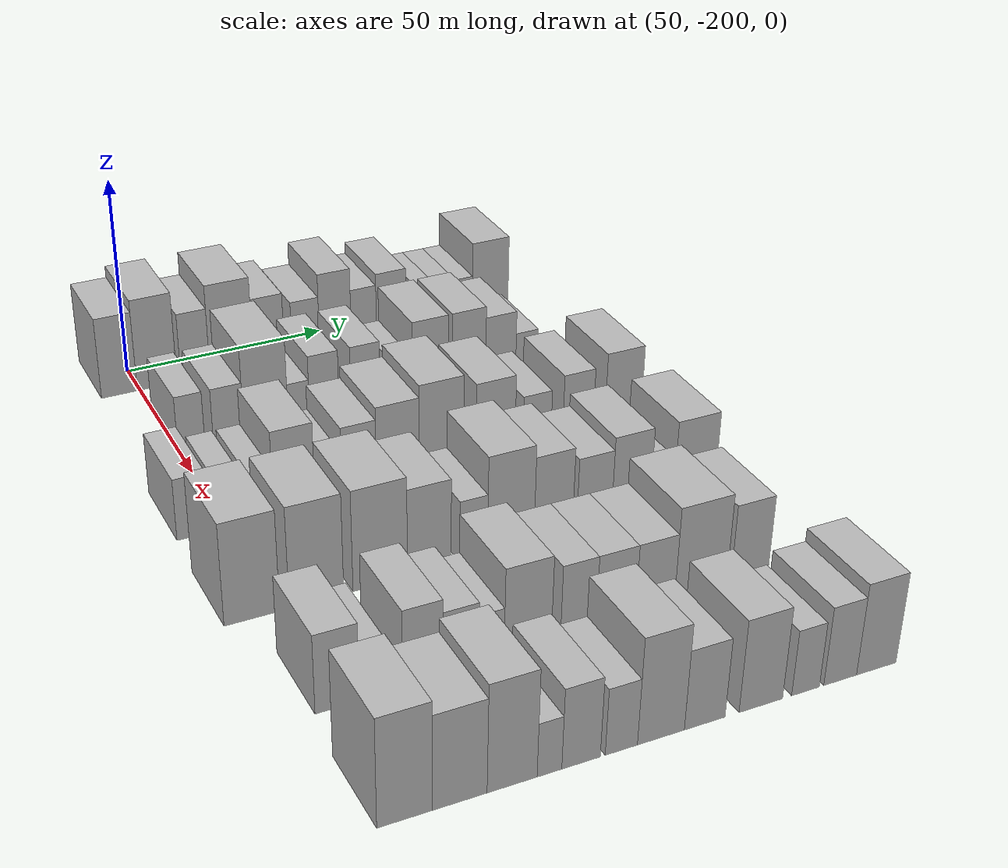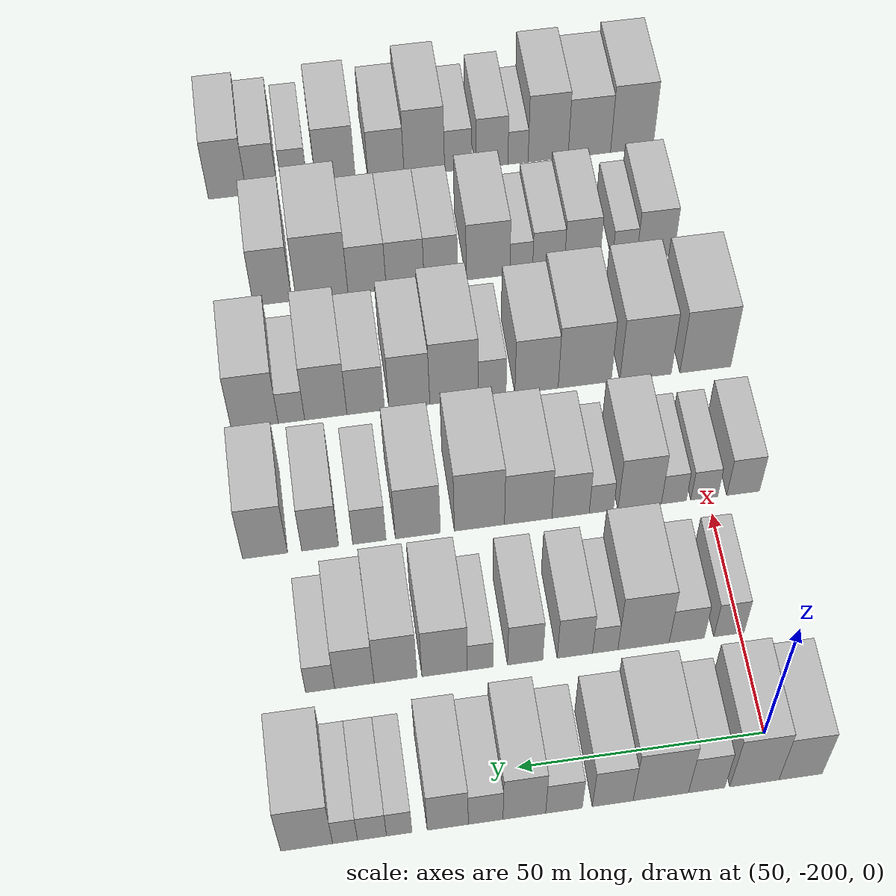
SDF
<sdf version="1.6">
 <world name="default">
  <model name="building_34">
   <static>1</static>
   <pose>50.0000 -205.0036 0 0.000000 0.000000 0.000000</pose>
   <link name="link">
    <pose>0 0 10.50 0 0 0</pose>
    <collision name="collision"><geometry><box><size>20.0000 8.7688 21.0000</size></box></geometry></collision>
    <visual name="visual">
     <cast_shadows>0</cast_shadows>
     <geometry><box><size>20.0000 8.7688 21.0000</size></box></geometry>
     <material>
      <script>
       <uri>model://HANNAS_wall/materials/scripts</uri>
       <uri>model://HANNAS_wall/materials/textures</uri>
       <name>vrc/HANNAS_wall</name>
      </script>
     </material>
    </visual>
   </link>
  </model>
  <model name="building_35">
   <static>1</static>
   <pose>50.0000 -195.6657 0 0.000000 0.000000 0.000000</pose>
   <link name="link">
    <pose>0 0 12.00 0 0 0</pose>
    <collision name="collision"><geometry><box><size>20.0000 9.9071 24.0000</size></box></geometry></collision>
    <visual name="visual">
     <cast_shadows>0</cast_shadows>
     <geometry><box><size>20.0000 9.9071 24.0000</size></box></geometry>
     <material>
      <script>
       <uri>model://HANNAS_wall/materials/scripts</uri>
       <uri>model://HANNAS_wall/materials/textures</uri>
       <name>vrc/HANNAS_wall</name>
      </script>
     </material>
    </visual>
   </link>
  </model>
  <model name="building_36">
   <static>1</static>
   <pose>50.0000 -186.0574 0 0.000000 0.000000 0.000000</pose>
   <link name="link">
    <pose>0 0 9.00 0 0 0</pose>
    <collision name="collision"><geometry><box><size>20.0000 7.3095 18.0000</size></box></geometry></collision>
    <visual name="visual">
     <cast_shadows>0</cast_shadows>
     <geometry><box><size>20.0000 7.3095 18.0000</size></box></geometry>
     <material>
      <script>
       <uri>model://HANNAS_wall/materials/scripts</uri>
       <uri>model://HANNAS_wall/materials/textures</uri>
       <name>vrc/HANNAS_wall</name>
      </script>
     </material>
    </visual>
   </link>
  </model>
  <model name="building_37">
   <static>1</static>
   <pose>50.0000 -176.8570 0 0.000000 0.000000 0.000000</pose>
   <link name="link">
    <pose>0 0 12.00 0 0 0</pose>
    <collision name="collision"><geometry><box><size>20.0000 11.0913 24.0000</size></box></geometry></collision>
    <visual name="visual">
     <cast_shadows>0</cast_shadows>
     <geometry><box><size>20.0000 11.0913 24.0000</size></box></geometry>
     <material>
      <script>
       <uri>model://HANNAS_wall/materials/scripts</uri>
       <uri>model://HANNAS_wall/materials/textures</uri>
       <name>vrc/HANNAS_wall</name>
      </script>
     </material>
    </visual>
   </link>
  </model>
  <model name="building_38">
   <static>1</static>
   <pose>50.0000 -167.2497 0 0.000000 0.000000 0.000000</pose>
   <link name="link">
    <pose>0 0 9.00 0 0 0</pose>
    <collision name="collision"><geometry><box><size>20.0000 8.1233 18.0000</size></box></geometry></collision>
    <visual name="visual">
     <cast_shadows>0</cast_shadows>
     <geometry><box><size>20.0000 8.1233 18.0000</size></box></geometry>
     <material>
      <script>
       <uri>model://HANNAS_wall/materials/scripts</uri>
       <uri>model://HANNAS_wall/materials/textures</uri>
       <name>vrc/HANNAS_wall</name>
      </script>
     </material>
    </visual>
   </link>
  </model>
  <model name="building_39">
   <static>1</static>
   <pose>50.0000 -157.5555 0 0.000000 0.000000 0.000000</pose>
   <link name="link">
    <pose>0 0 7.50 0 0 0</pose>
    <collision name="collision"><geometry><box><size>20.0000 7.2650 15.0000</size></box></geometry></collision>
    <visual name="visual">
     <cast_shadows>0</cast_shadows>
     <geometry><box><size>20.0000 7.2650 15.0000</size></box></geometry>
     <material>
      <script>
       <uri>model://HANNAS_wall/materials/scripts</uri>
       <uri>model://HANNAS_wall/materials/textures</uri>
       <name>vrc/HANNAS_wall</name>
      </script>
     </material>
    </visual>
   </link>
  </model>
  <model name="building_40">
   <static>1</static>
   <pose>50.0000 -149.7007 0 0.000000 0.000000 0.000000</pose>
   <link name="link">
    <pose>0 0 10.50 0 0 0</pose>
    <collision name="collision"><geometry><box><size>20.0000 8.4447 21.0000</size></box></geometry></collision>
    <visual name="visual">
     <cast_shadows>0</cast_shadows>
     <geometry><box><size>20.0000 8.4447 21.0000</size></box></geometry>
     <material>
      <script>
       <uri>model://HANNAS_wall/materials/scripts</uri>
       <uri>model://HANNAS_wall/materials/textures</uri>
       <name>vrc/HANNAS_wall</name>
      </script>
     </material>
    </visual>
   </link>
  </model>
  <model name="building_41">
   <static>1</static>
   <pose>50.0000 -142.0611 0 0.000000 0.000000 0.000000</pose>
   <link name="link">
    <pose>0 0 7.50 0 0 0</pose>
    <collision name="collision"><geometry><box><size>20.0000 6.8345 15.0000</size></box></geometry></collision>
    <visual name="visual">
     <cast_shadows>0</cast_shadows>
     <geometry><box><size>20.0000 6.8345 15.0000</size></box></geometry>
     <material>
      <script>
       <uri>model://HANNAS_wall/materials/scripts</uri>
       <uri>model://HANNAS_wall/materials/textures</uri>
       <name>vrc/HANNAS_wall</name>
      </script>
     </material>
    </visual>
   </link>
  </model>
  <model name="building_42">
   <static>1</static>
   <pose>50.0000 -134.6057 0 0.000000 0.000000 0.000000</pose>
   <link name="link">
    <pose>0 0 9.00 0 0 0</pose>
    <collision name="collision"><geometry><box><size>20.0000 8.0764 18.0000</size></box></geometry></collision>
    <visual name="visual">
     <cast_shadows>0</cast_shadows>
     <geometry><box><size>20.0000 8.0764 18.0000</size></box></geometry>
     <material>
      <script>
       <uri>model://HANNAS_wall/materials/scripts</uri>
       <uri>model://HANNAS_wall/materials/textures</uri>
       <name>vrc/HANNAS_wall</name>
      </script>
     </material>
    </visual>
   </link>
  </model>
  <model name="building_43">
   <static>1</static>
   <pose>50.0000 -125.0768 0 0.000000 0.000000 0.000000</pose>
   <link name="link">
    <pose>0 0 6.00 0 0 0</pose>
    <collision name="collision"><geometry><box><size>20.0000 4.9813 12.0000</size></box></geometry></collision>
    <visual name="visual">
     <cast_shadows>0</cast_shadows>
     <geometry><box><size>20.0000 4.9813 12.0000</size></box></geometry>
     <material>
      <script>
       <uri>model://HANNAS_wall/materials/scripts</uri>
       <uri>model://HANNAS_wall/materials/textures</uri>
       <name>vrc/HANNAS_wall</name>
      </script>
     </material>
    </visual>
   </link>
  </model>
  <model name="building_44">
   <static>1</static>
   <pose>50.0000 -119.7535 0 0.000000 0.000000 0.000000</pose>
   <link name="link">
    <pose>0 0 6.00 0 0 0</pose>
    <collision name="collision"><geometry><box><size>20.0000 5.6653 12.0000</size></box></geometry></collision>
    <visual name="visual">
     <cast_shadows>0</cast_shadows>
     <geometry><box><size>20.0000 5.6653 12.0000</size></box></geometry>
     <material>
      <script>
       <uri>model://HANNAS_wall/materials/scripts</uri>
       <uri>model://HANNAS_wall/materials/textures</uri>
       <name>vrc/HANNAS_wall</name>
      </script>
     </material>
    </visual>
   </link>
  </model>
  <model name="building_45">
   <static>1</static>
   <pose>50.0000 -114.5015 0 0.000000 0.000000 0.000000</pose>
   <link name="link">
    <pose>0 0 6.00 0 0 0</pose>
    <collision name="collision"><geometry><box><size>20.0000 4.8387 12.0000</size></box></geometry></collision>
    <visual name="visual">
     <cast_shadows>0</cast_shadows>
     <geometry><box><size>20.0000 4.8387 12.0000</size></box></geometry>
     <material>
      <script>
       <uri>model://HANNAS_wall/materials/scripts</uri>
       <uri>model://HANNAS_wall/materials/textures</uri>
       <name>vrc/HANNAS_wall</name>
      </script>
     </material>
    </visual>
   </link>
  </model>
  <model name="building_46">
   <static>1</static>
   <pose>50.0000 -107.0368 0 0.000000 0.000000 0.000000</pose>
   <link name="link">
    <pose>0 0 10.50 0 0 0</pose>
    <collision name="collision"><geometry><box><size>20.0000 10.0906 21.0000</size></box></geometry></collision>
    <visual name="visual">
     <cast_shadows>0</cast_shadows>
     <geometry><box><size>20.0000 10.0906 21.0000</size></box></geometry>
     <material>
      <script>
       <uri>model://HANNAS_wall/materials/scripts</uri>
       <uri>model://HANNAS_wall/materials/textures</uri>
       <name>vrc/HANNAS_wall</name>
      </script>
     </material>
    </visual>
   </link>
  </model>
  <model name="building_153">
   <static>1</static>
   <pose>82.0000 -197.5042 0 0.000000 0.000000 0.000000</pose>
   <link name="link">
    <pose>0 0 7.50 0 0 0</pose>
    <collision name="collision"><geometry><box><size>20.0000 6.3802 15.0000</size></box></geometry></collision>
    <visual name="visual">
     <cast_shadows>0</cast_shadows>
     <geometry><box><size>20.0000 6.3802 15.0000</size></box></geometry>
     <material>
      <script>
       <uri>model://HANNAS_wall/materials/scripts</uri>
       <uri>model://HANNAS_wall/materials/textures</uri>
       <name>vrc/HANNAS_wall</name>
      </script>
     </material>
    </visual>
   </link>
  </model>
  <model name="building_154">
   <static>1</static>
   <pose>82.0000 -188.6390 0 0.000000 0.000000 0.000000</pose>
   <link name="link">
    <pose>0 0 7.50 0 0 0</pose>
    <collision name="collision"><geometry><box><size>20.0000 7.3500 15.0000</size></box></geometry></collision>
    <visual name="visual">
     <cast_shadows>0</cast_shadows>
     <geometry><box><size>20.0000 7.3500 15.0000</size></box></geometry>
     <material>
      <script>
       <uri>model://HANNAS_wall/materials/scripts</uri>
       <uri>model://HANNAS_wall/materials/textures</uri>
       <name>vrc/HANNAS_wall</name>
      </script>
     </material>
    </visual>
   </link>
  </model>
  <model name="building_155">
   <static>1</static>
   <pose>82.0000 -179.5988 0 0.000000 0.000000 0.000000</pose>
   <link name="link">
    <pose>0 0 12.00 0 0 0</pose>
    <collision name="collision"><geometry><box><size>20.0000 10.7304 24.0000</size></box></geometry></collision>
    <visual name="visual">
     <cast_shadows>0</cast_shadows>
     <geometry><box><size>20.0000 10.7304 24.0000</size></box></geometry>
     <material>
      <script>
       <uri>model://HANNAS_wall/materials/scripts</uri>
       <uri>model://HANNAS_wall/materials/textures</uri>
       <name>vrc/HANNAS_wall</name>
      </script>
     </material>
    </visual>
   </link>
  </model>
  <model name="building_156">
   <static>1</static>
   <pose>82.0000 -171.5956 0 0.000000 0.000000 0.000000</pose>
   <link name="link">
    <pose>0 0 6.00 0 0 0</pose>
    <collision name="collision"><geometry><box><size>20.0000 5.2760 12.0000</size></box></geometry></collision>
    <visual name="visual">
     <cast_shadows>0</cast_shadows>
     <geometry><box><size>20.0000 5.2760 12.0000</size></box></geometry>
     <material>
      <script>
       <uri>model://HANNAS_wall/materials/scripts</uri>
       <uri>model://HANNAS_wall/materials/textures</uri>
       <name>vrc/HANNAS_wall</name>
      </script>
     </material>
    </visual>
   </link>
  </model>
  <model name="building_157">
   <static>1</static>
   <pose>82.0000 -165.2930 0 0.000000 0.000000 0.000000</pose>
   <link name="link">
    <pose>0 0 9.00 0 0 0</pose>
    <collision name="collision"><geometry><box><size>20.0000 7.3291 18.0000</size></box></geometry></collision>
    <visual name="visual">
     <cast_shadows>0</cast_shadows>
     <geometry><box><size>20.0000 7.3291 18.0000</size></box></geometry>
     <material>
      <script>
       <uri>model://HANNAS_wall/materials/scripts</uri>
       <uri>model://HANNAS_wall/materials/textures</uri>
       <name>vrc/HANNAS_wall</name>
      </script>
     </material>
    </visual>
   </link>
  </model>
  <model name="building_158">
   <static>1</static>
   <pose>82.0000 -154.9840 0 0.000000 0.000000 0.000000</pose>
   <link name="link">
    <pose>0 0 9.00 0 0 0</pose>
    <collision name="collision"><geometry><box><size>20.0000 7.2888 18.0000</size></box></geometry></collision>
    <visual name="visual">
     <cast_shadows>0</cast_shadows>
     <geometry><box><size>20.0000 7.2888 18.0000</size></box></geometry>
     <material>
      <script>
       <uri>model://HANNAS_wall/materials/scripts</uri>
       <uri>model://HANNAS_wall/materials/textures</uri>
       <name>vrc/HANNAS_wall</name>
      </script>
     </material>
    </visual>
   </link>
  </model>
  <model name="building_159">
   <static>1</static>
   <pose>82.0000 -145.6950 0 0.000000 0.000000 0.000000</pose>
   <link name="link">
    <pose>0 0 6.00 0 0 0</pose>
    <collision name="collision"><geometry><box><size>20.0000 5.2893 12.0000</size></box></geometry></collision>
    <visual name="visual">
     <cast_shadows>0</cast_shadows>
     <geometry><box><size>20.0000 5.2893 12.0000</size></box></geometry>
     <material>
      <script>
       <uri>model://HANNAS_wall/materials/scripts</uri>
       <uri>model://HANNAS_wall/materials/textures</uri>
       <name>vrc/HANNAS_wall</name>
      </script>
     </material>
    </visual>
   </link>
  </model>
  <model name="building_160">
   <static>1</static>
   <pose>82.0000 -138.3822 0 0.000000 0.000000 0.000000</pose>
   <link name="link">
    <pose>0 0 10.50 0 0 0</pose>
    <collision name="collision"><geometry><box><size>20.0000 9.3364 21.0000</size></box></geometry></collision>
    <visual name="visual">
     <cast_shadows>0</cast_shadows>
     <geometry><box><size>20.0000 9.3364 21.0000</size></box></geometry>
     <material>
      <script>
       <uri>model://HANNAS_wall/materials/scripts</uri>
       <uri>model://HANNAS_wall/materials/textures</uri>
       <name>vrc/HANNAS_wall</name>
      </script>
     </material>
    </visual>
   </link>
  </model>
  <model name="building_161">
   <static>1</static>
   <pose>82.0000 -128.3232 0 0.000000 0.000000 0.000000</pose>
   <link name="link">
    <pose>0 0 10.50 0 0 0</pose>
    <collision name="collision"><geometry><box><size>20.0000 8.7815 21.0000</size></box></geometry></collision>
    <visual name="visual">
     <cast_shadows>0</cast_shadows>
     <geometry><box><size>20.0000 8.7815 21.0000</size></box></geometry>
     <material>
      <script>
       <uri>model://HANNAS_wall/materials/scripts</uri>
       <uri>model://HANNAS_wall/materials/textures</uri>
       <name>vrc/HANNAS_wall</name>
      </script>
     </material>
    </visual>
   </link>
  </model>
  <model name="building_162">
   <static>1</static>
   <pose>82.0000 -119.9113 0 0.000000 0.000000 0.000000</pose>
   <link name="link">
    <pose>0 0 9.00 0 0 0</pose>
    <collision name="collision"><geometry><box><size>20.0000 8.0423 18.0000</size></box></geometry></collision>
    <visual name="visual">
     <cast_shadows>0</cast_shadows>
     <geometry><box><size>20.0000 8.0423 18.0000</size></box></geometry>
     <material>
      <script>
       <uri>model://HANNAS_wall/materials/scripts</uri>
       <uri>model://HANNAS_wall/materials/textures</uri>
       <name>vrc/HANNAS_wall</name>
      </script>
     </material>
    </visual>
   </link>
  </model>
  <model name="building_163">
   <static>1</static>
   <pose>82.0000 -112.9196 0 0.000000 0.000000 0.000000</pose>
   <link name="link">
    <pose>0 0 6.00 0 0 0</pose>
    <collision name="collision"><geometry><box><size>20.0000 5.9413 12.0000</size></box></geometry></collision>
    <visual name="visual">
     <cast_shadows>0</cast_shadows>
     <geometry><box><size>20.0000 5.9413 12.0000</size></box></geometry>
     <material>
      <script>
       <uri>model://HANNAS_wall/materials/scripts</uri>
       <uri>model://HANNAS_wall/materials/textures</uri>
       <name>vrc/HANNAS_wall</name>
      </script>
     </material>
    </visual>
   </link>
  </model>
  <model name="building_271">
   <static>1</static>
   <pose>114.0000 -207.6199 0 0.000000 0.000000 0.000000</pose>
   <link name="link">
    <pose>0 0 7.50 0 0 0</pose>
    <collision name="collision"><geometry><box><size>20.0000 7.1985 15.0000</size></box></geometry></collision>
    <visual name="visual">
     <cast_shadows>0</cast_shadows>
     <geometry><box><size>20.0000 7.1985 15.0000</size></box></geometry>
     <material>
      <script>
       <uri>model://HANNAS_wall/materials/scripts</uri>
       <uri>model://HANNAS_wall/materials/textures</uri>
       <name>vrc/HANNAS_wall</name>
      </script>
     </material>
    </visual>
   </link>
  </model>
  <model name="building_272">
   <static>1</static>
   <pose>114.0000 -199.0714 0 0.000000 0.000000 0.000000</pose>
   <link name="link">
    <pose>0 0 6.00 0 0 0</pose>
    <collision name="collision"><geometry><box><size>20.0000 5.8987 12.0000</size></box></geometry></collision>
    <visual name="visual">
     <cast_shadows>0</cast_shadows>
     <geometry><box><size>20.0000 5.8987 12.0000</size></box></geometry>
     <material>
      <script>
       <uri>model://HANNAS_wall/materials/scripts</uri>
       <uri>model://HANNAS_wall/materials/textures</uri>
       <name>vrc/HANNAS_wall</name>
      </script>
     </material>
    </visual>
   </link>
  </model>
  <model name="building_273">
   <static>1</static>
   <pose>114.0000 -192.3953 0 0.000000 0.000000 0.000000</pose>
   <link name="link">
    <pose>0 0 6.00 0 0 0</pose>
    <collision name="collision"><geometry><box><size>20.0000 5.4534 12.0000</size></box></geometry></collision>
    <visual name="visual">
     <cast_shadows>0</cast_shadows>
     <geometry><box><size>20.0000 5.4534 12.0000</size></box></geometry>
     <material>
      <script>
       <uri>model://HANNAS_wall/materials/scripts</uri>
       <uri>model://HANNAS_wall/materials/textures</uri>
       <name>vrc/HANNAS_wall</name>
      </script>
     </material>
    </visual>
   </link>
  </model>
  <model name="building_274">
   <static>1</static>
   <pose>114.0000 -184.9423 0 0.000000 0.000000 0.000000</pose>
   <link name="link">
    <pose>0 0 10.50 0 0 0</pose>
    <collision name="collision"><geometry><box><size>20.0000 9.4526 21.0000</size></box></geometry></collision>
    <visual name="visual">
     <cast_shadows>0</cast_shadows>
     <geometry><box><size>20.0000 9.4526 21.0000</size></box></geometry>
     <material>
      <script>
       <uri>model://HANNAS_wall/materials/scripts</uri>
       <uri>model://HANNAS_wall/materials/textures</uri>
       <name>vrc/HANNAS_wall</name>
      </script>
     </material>
    </visual>
   </link>
  </model>
  <model name="building_275">
   <static>1</static>
   <pose>114.0000 -176.5830 0 0.000000 0.000000 0.000000</pose>
   <link name="link">
    <pose>0 0 6.00 0 0 0</pose>
    <collision name="collision"><geometry><box><size>20.0000 5.2660 12.0000</size></box></geometry></collision>
    <visual name="visual">
     <cast_shadows>0</cast_shadows>
     <geometry><box><size>20.0000 5.2660 12.0000</size></box></geometry>
     <material>
      <script>
       <uri>model://HANNAS_wall/materials/scripts</uri>
       <uri>model://HANNAS_wall/materials/textures</uri>
       <name>vrc/HANNAS_wall</name>
      </script>
     </material>
    </visual>
   </link>
  </model>
  <model name="building_276">
   <static>1</static>
   <pose>114.0000 -169.9051 0 0.000000 0.000000 0.000000</pose>
   <link name="link">
    <pose>0 0 9.00 0 0 0</pose>
    <collision name="collision"><geometry><box><size>20.0000 8.0898 18.0000</size></box></geometry></collision>
    <visual name="visual">
     <cast_shadows>0</cast_shadows>
     <geometry><box><size>20.0000 8.0898 18.0000</size></box></geometry>
     <material>
      <script>
       <uri>model://HANNAS_wall/materials/scripts</uri>
       <uri>model://HANNAS_wall/materials/textures</uri>
       <name>vrc/HANNAS_wall</name>
      </script>
     </material>
    </visual>
   </link>
  </model>
  <model name="building_277">
   <static>1</static>
   <pose>114.0000 -160.7499 0 0.000000 0.000000 0.000000</pose>
   <link name="link">
    <pose>0 0 10.50 0 0 0</pose>
    <collision name="collision"><geometry><box><size>20.0000 10.2206 21.0000</size></box></geometry></collision>
    <visual name="visual">
     <cast_shadows>0</cast_shadows>
     <geometry><box><size>20.0000 10.2206 21.0000</size></box></geometry>
     <material>
      <script>
       <uri>model://HANNAS_wall/materials/scripts</uri>
       <uri>model://HANNAS_wall/materials/textures</uri>
       <name>vrc/HANNAS_wall</name>
      </script>
     </material>
    </visual>
   </link>
  </model>
  <model name="building_278">
   <static>1</static>
   <pose>114.0000 -150.2514 0 0.000000 0.000000 0.000000</pose>
   <link name="link">
    <pose>0 0 12.00 0 0 0</pose>
    <collision name="collision"><geometry><box><size>20.0000 10.7765 24.0000</size></box></geometry></collision>
    <visual name="visual">
     <cast_shadows>0</cast_shadows>
     <geometry><box><size>20.0000 10.7765 24.0000</size></box></geometry>
     <material>
      <script>
       <uri>model://HANNAS_wall/materials/scripts</uri>
       <uri>model://HANNAS_wall/materials/textures</uri>
       <name>vrc/HANNAS_wall</name>
      </script>
     </material>
    </visual>
   </link>
  </model>
  <model name="building_279">
   <static>1</static>
   <pose>114.0000 -137.0425 0 0.000000 0.000000 0.000000</pose>
   <link name="link">
    <pose>0 0 10.50 0 0 0</pose>
    <collision name="collision"><geometry><box><size>20.0000 9.6412 21.0000</size></box></geometry></collision>
    <visual name="visual">
     <cast_shadows>0</cast_shadows>
     <geometry><box><size>20.0000 9.6412 21.0000</size></box></geometry>
     <material>
      <script>
       <uri>model://HANNAS_wall/materials/scripts</uri>
       <uri>model://HANNAS_wall/materials/textures</uri>
       <name>vrc/HANNAS_wall</name>
      </script>
     </material>
    </visual>
   </link>
  </model>
  <model name="building_280">
   <static>1</static>
   <pose>114.0000 -126.6742 0 0.000000 0.000000 0.000000</pose>
   <link name="link">
    <pose>0 0 7.50 0 0 0</pose>
    <collision name="collision"><geometry><box><size>20.0000 7.0954 15.0000</size></box></geometry></collision>
    <visual name="visual">
     <cast_shadows>0</cast_shadows>
     <geometry><box><size>20.0000 7.0954 15.0000</size></box></geometry>
     <material>
      <script>
       <uri>model://HANNAS_wall/materials/scripts</uri>
       <uri>model://HANNAS_wall/materials/textures</uri>
       <name>vrc/HANNAS_wall</name>
      </script>
     </material>
    </visual>
   </link>
  </model>
  <model name="building_281">
   <static>1</static>
   <pose>114.0000 -116.2055 0 0.000000 0.000000 0.000000</pose>
   <link name="link">
    <pose>0 0 9.00 0 0 0</pose>
    <collision name="collision"><geometry><box><size>20.0000 7.8419 18.0000</size></box></geometry></collision>
    <visual name="visual">
     <cast_shadows>0</cast_shadows>
     <geometry><box><size>20.0000 7.8419 18.0000</size></box></geometry>
     <material>
      <script>
       <uri>model://HANNAS_wall/materials/scripts</uri>
       <uri>model://HANNAS_wall/materials/textures</uri>
       <name>vrc/HANNAS_wall</name>
      </script>
     </material>
    </visual>
   </link>
  </model>
  <model name="building_282">
   <static>1</static>
   <pose>114.0000 -104.5231 0 0.000000 0.000000 0.000000</pose>
   <link name="link">
    <pose>0 0 10.50 0 0 0</pose>
    <collision name="collision"><geometry><box><size>20.0000 9.5230 21.0000</size></box></geometry></collision>
    <visual name="visual">
     <cast_shadows>0</cast_shadows>
     <geometry><box><size>20.0000 9.5230 21.0000</size></box></geometry>
     <material>
      <script>
       <uri>model://HANNAS_wall/materials/scripts</uri>
       <uri>model://HANNAS_wall/materials/textures</uri>
       <name>vrc/HANNAS_wall</name>
      </script>
     </material>
    </visual>
   </link>
  </model>
  <model name="building_388">
   <static>1</static>
   <pose>146.0000 -206.0702 0 0.000000 0.000000 0.000000</pose>
   <link name="link">
    <pose>0 0 12.00 0 0 0</pose>
    <collision name="collision"><geometry><box><size>20.0000 11.6003 24.0000</size></box></geometry></collision>
    <visual name="visual">
     <cast_shadows>0</cast_shadows>
     <geometry><box><size>20.0000 11.6003 24.0000</size></box></geometry>
     <material>
      <script>
       <uri>model://HANNAS_wall/materials/scripts</uri>
       <uri>model://HANNAS_wall/materials/textures</uri>
       <name>vrc/HANNAS_wall</name>
      </script>
     </material>
    </visual>
   </link>
  </model>
  <model name="building_389">
   <static>1</static>
   <pose>146.0000 -192.4437 0 0.000000 0.000000 0.000000</pose>
   <link name="link">
    <pose>0 0 12.00 0 0 0</pose>
    <collision name="collision"><geometry><box><size>20.0000 11.6526 24.0000</size></box></geometry></collision>
    <visual name="visual">
     <cast_shadows>0</cast_shadows>
     <geometry><box><size>20.0000 11.6526 24.0000</size></box></geometry>
     <material>
      <script>
       <uri>model://HANNAS_wall/materials/scripts</uri>
       <uri>model://HANNAS_wall/materials/textures</uri>
       <name>vrc/HANNAS_wall</name>
      </script>
     </material>
    </visual>
   </link>
  </model>
  <model name="building_390">
   <static>1</static>
   <pose>146.0000 -178.6334 0 0.000000 0.000000 0.000000</pose>
   <link name="link">
    <pose>0 0 12.00 0 0 0</pose>
    <collision name="collision"><geometry><box><size>20.0000 11.9680 24.0000</size></box></geometry></collision>
    <visual name="visual">
     <cast_shadows>0</cast_shadows>
     <geometry><box><size>20.0000 11.9680 24.0000</size></box></geometry>
     <material>
      <script>
       <uri>model://HANNAS_wall/materials/scripts</uri>
       <uri>model://HANNAS_wall/materials/textures</uri>
       <name>vrc/HANNAS_wall</name>
      </script>
     </material>
    </visual>
   </link>
  </model>
  <model name="building_391">
   <static>1</static>
   <pose>146.0000 -167.7760 0 0.000000 0.000000 0.000000</pose>
   <link name="link">
    <pose>0 0 10.50 0 0 0</pose>
    <collision name="collision"><geometry><box><size>20.0000 9.7470 21.0000</size></box></geometry></collision>
    <visual name="visual">
     <cast_shadows>0</cast_shadows>
     <geometry><box><size>20.0000 9.7470 21.0000</size></box></geometry>
     <material>
      <script>
       <uri>model://HANNAS_wall/materials/scripts</uri>
       <uri>model://HANNAS_wall/materials/textures</uri>
       <name>vrc/HANNAS_wall</name>
      </script>
     </material>
    </visual>
   </link>
  </model>
  <model name="building_392">
   <static>1</static>
   <pose>146.0000 -157.7699 0 0.000000 0.000000 0.000000</pose>
   <link name="link">
    <pose>0 0 7.50 0 0 0</pose>
    <collision name="collision"><geometry><box><size>20.0000 6.2651 15.0000</size></box></geometry></collision>
    <visual name="visual">
     <cast_shadows>0</cast_shadows>
     <geometry><box><size>20.0000 6.2651 15.0000</size></box></geometry>
     <material>
      <script>
       <uri>model://HANNAS_wall/materials/scripts</uri>
       <uri>model://HANNAS_wall/materials/textures</uri>
       <name>vrc/HANNAS_wall</name>
      </script>
     </material>
    </visual>
   </link>
  </model>
  <model name="building_393">
   <static>1</static>
   <pose>146.0000 -149.2395 0 0.000000 0.000000 0.000000</pose>
   <link name="link">
    <pose>0 0 12.00 0 0 0</pose>
    <collision name="collision"><geometry><box><size>20.0000 10.7957 24.0000</size></box></geometry></collision>
    <visual name="visual">
     <cast_shadows>0</cast_shadows>
     <geometry><box><size>20.0000 10.7957 24.0000</size></box></geometry>
     <material>
      <script>
       <uri>model://HANNAS_wall/materials/scripts</uri>
       <uri>model://HANNAS_wall/materials/textures</uri>
       <name>vrc/HANNAS_wall</name>
      </script>
     </material>
    </visual>
   </link>
  </model>
  <model name="building_394">
   <static>1</static>
   <pose>146.0000 -139.3022 0 0.000000 0.000000 0.000000</pose>
   <link name="link">
    <pose>0 0 10.50 0 0 0</pose>
    <collision name="collision"><geometry><box><size>20.0000 9.0789 21.0000</size></box></geometry></collision>
    <visual name="visual">
     <cast_shadows>0</cast_shadows>
     <geometry><box><size>20.0000 9.0789 21.0000</size></box></geometry>
     <material>
      <script>
       <uri>model://HANNAS_wall/materials/scripts</uri>
       <uri>model://HANNAS_wall/materials/textures</uri>
       <name>vrc/HANNAS_wall</name>
      </script>
     </material>
    </visual>
   </link>
  </model>
  <model name="building_395">
   <static>1</static>
   <pose>146.0000 -129.5812 0 0.000000 0.000000 0.000000</pose>
   <link name="link">
    <pose>0 0 9.00 0 0 0</pose>
    <collision name="collision"><geometry><box><size>20.0000 8.3630 18.0000</size></box></geometry></collision>
    <visual name="visual">
     <cast_shadows>0</cast_shadows>
     <geometry><box><size>20.0000 8.3630 18.0000</size></box></geometry>
     <material>
      <script>
       <uri>model://HANNAS_wall/materials/scripts</uri>
       <uri>model://HANNAS_wall/materials/textures</uri>
       <name>vrc/HANNAS_wall</name>
      </script>
     </material>
    </visual>
   </link>
  </model>
  <model name="building_396">
   <static>1</static>
   <pose>146.0000 -120.7192 0 0.000000 0.000000 0.000000</pose>
   <link name="link">
    <pose>0 0 10.50 0 0 0</pose>
    <collision name="collision"><geometry><box><size>20.0000 9.3611 21.0000</size></box></geometry></collision>
    <visual name="visual">
     <cast_shadows>0</cast_shadows>
     <geometry><box><size>20.0000 9.3611 21.0000</size></box></geometry>
     <material>
      <script>
       <uri>model://HANNAS_wall/materials/scripts</uri>
       <uri>model://HANNAS_wall/materials/textures</uri>
       <name>vrc/HANNAS_wall</name>
      </script>
     </material>
    </visual>
   </link>
  </model>
  <model name="building_397">
   <static>1</static>
   <pose>146.0000 -113.1296 0 0.000000 0.000000 0.000000</pose>
   <link name="link">
    <pose>0 0 6.00 0 0 0</pose>
    <collision name="collision"><geometry><box><size>20.0000 5.8181 12.0000</size></box></geometry></collision>
    <visual name="visual">
     <cast_shadows>0</cast_shadows>
     <geometry><box><size>20.0000 5.8181 12.0000</size></box></geometry>
     <material>
      <script>
       <uri>model://HANNAS_wall/materials/scripts</uri>
       <uri>model://HANNAS_wall/materials/textures</uri>
       <name>vrc/HANNAS_wall</name>
      </script>
     </material>
    </visual>
   </link>
  </model>
  <model name="building_398">
   <static>1</static>
   <pose>146.0000 -105.0390 0 0.000000 0.000000 0.000000</pose>
   <link name="link">
    <pose>0 0 10.50 0 0 0</pose>
    <collision name="collision"><geometry><box><size>20.0000 10.3629 21.0000</size></box></geometry></collision>
    <visual name="visual">
     <cast_shadows>0</cast_shadows>
     <geometry><box><size>20.0000 10.3629 21.0000</size></box></geometry>
     <material>
      <script>
       <uri>model://HANNAS_wall/materials/scripts</uri>
       <uri>model://HANNAS_wall/materials/textures</uri>
       <name>vrc/HANNAS_wall</name>
      </script>
     </material>
    </visual>
   </link>
  </model>
  <model name="building_503">
   <static>1</static>
   <pose>178.0000 -200.9285 0 0.000000 0.000000 0.000000</pose>
   <link name="link">
    <pose>0 0 9.00 0 0 0</pose>
    <collision name="collision"><geometry><box><size>20.0000 8.8174 18.0000</size></box></geometry></collision>
    <visual name="visual">
     <cast_shadows>0</cast_shadows>
     <geometry><box><size>20.0000 8.8174 18.0000</size></box></geometry>
     <material>
      <script>
       <uri>model://HANNAS_wall/materials/scripts</uri>
       <uri>model://HANNAS_wall/materials/textures</uri>
       <name>vrc/HANNAS_wall</name>
      </script>
     </material>
    </visual>
   </link>
  </model>
  <model name="building_504">
   <static>1</static>
   <pose>178.0000 -193.6629 0 0.000000 0.000000 0.000000</pose>
   <link name="link">
    <pose>0 0 6.00 0 0 0</pose>
    <collision name="collision"><geometry><box><size>20.0000 5.7139 12.0000</size></box></geometry></collision>
    <visual name="visual">
     <cast_shadows>0</cast_shadows>
     <geometry><box><size>20.0000 5.7139 12.0000</size></box></geometry>
     <material>
      <script>
       <uri>model://HANNAS_wall/materials/scripts</uri>
       <uri>model://HANNAS_wall/materials/textures</uri>
       <name>vrc/HANNAS_wall</name>
      </script>
     </material>
    </visual>
   </link>
  </model>
  <model name="building_505">
   <static>1</static>
   <pose>178.0000 -183.6544 0 0.000000 0.000000 0.000000</pose>
   <link name="link">
    <pose>0 0 9.00 0 0 0</pose>
    <collision name="collision"><geometry><box><size>20.0000 8.3031 18.0000</size></box></geometry></collision>
    <visual name="visual">
     <cast_shadows>0</cast_shadows>
     <geometry><box><size>20.0000 8.3031 18.0000</size></box></geometry>
     <material>
      <script>
       <uri>model://HANNAS_wall/materials/scripts</uri>
       <uri>model://HANNAS_wall/materials/textures</uri>
       <name>vrc/HANNAS_wall</name>
      </script>
     </material>
    </visual>
   </link>
  </model>
  <model name="building_506">
   <static>1</static>
   <pose>178.0000 -175.7683 0 0.000000 0.000000 0.000000</pose>
   <link name="link">
    <pose>0 0 7.50 0 0 0</pose>
    <collision name="collision"><geometry><box><size>20.0000 7.4690 15.0000</size></box></geometry></collision>
    <visual name="visual">
     <cast_shadows>0</cast_shadows>
     <geometry><box><size>20.0000 7.4690 15.0000</size></box></geometry>
     <material>
      <script>
       <uri>model://HANNAS_wall/materials/scripts</uri>
       <uri>model://HANNAS_wall/materials/textures</uri>
       <name>vrc/HANNAS_wall</name>
      </script>
     </material>
    </visual>
   </link>
  </model>
  <model name="building_507">
   <static>1</static>
   <pose>178.0000 -169.3777 0 0.000000 0.000000 0.000000</pose>
   <link name="link">
    <pose>0 0 6.00 0 0 0</pose>
    <collision name="collision"><geometry><box><size>20.0000 5.3122 12.0000</size></box></geometry></collision>
    <visual name="visual">
     <cast_shadows>0</cast_shadows>
     <geometry><box><size>20.0000 5.3122 12.0000</size></box></geometry>
     <material>
      <script>
       <uri>model://HANNAS_wall/materials/scripts</uri>
       <uri>model://HANNAS_wall/materials/textures</uri>
       <name>vrc/HANNAS_wall</name>
      </script>
     </material>
    </visual>
   </link>
  </model>
  <model name="building_508">
   <static>1</static>
   <pose>178.0000 -161.6490 0 0.000000 0.000000 0.000000</pose>
   <link name="link">
    <pose>0 0 10.50 0 0 0</pose>
    <collision name="collision"><geometry><box><size>20.0000 10.1452 21.0000</size></box></geometry></collision>
    <visual name="visual">
     <cast_shadows>0</cast_shadows>
     <geometry><box><size>20.0000 10.1452 21.0000</size></box></geometry>
     <material>
      <script>
       <uri>model://HANNAS_wall/materials/scripts</uri>
       <uri>model://HANNAS_wall/materials/textures</uri>
       <name>vrc/HANNAS_wall</name>
      </script>
     </material>
    </visual>
   </link>
  </model>
  <model name="building_509">
   <static>1</static>
   <pose>178.0000 -150.6850 0 0.000000 0.000000 0.000000</pose>
   <link name="link">
    <pose>0 0 9.00 0 0 0</pose>
    <collision name="collision"><geometry><box><size>20.0000 7.7829 18.0000</size></box></geometry></collision>
    <visual name="visual">
     <cast_shadows>0</cast_shadows>
     <geometry><box><size>20.0000 7.7829 18.0000</size></box></geometry>
     <material>
      <script>
       <uri>model://HANNAS_wall/materials/scripts</uri>
       <uri>model://HANNAS_wall/materials/textures</uri>
       <name>vrc/HANNAS_wall</name>
      </script>
     </material>
    </visual>
   </link>
  </model>
  <model name="building_510">
   <static>1</static>
   <pose>178.0000 -142.3955 0 0.000000 0.000000 0.000000</pose>
   <link name="link">
    <pose>0 0 9.00 0 0 0</pose>
    <collision name="collision"><geometry><box><size>20.0000 8.7960 18.0000</size></box></geometry></collision>
    <visual name="visual">
     <cast_shadows>0</cast_shadows>
     <geometry><box><size>20.0000 8.7960 18.0000</size></box></geometry>
     <material>
      <script>
       <uri>model://HANNAS_wall/materials/scripts</uri>
       <uri>model://HANNAS_wall/materials/textures</uri>
       <name>vrc/HANNAS_wall</name>
      </script>
     </material>
    </visual>
   </link>
  </model>
  <model name="building_511">
   <static>1</static>
   <pose>178.0000 -133.5891 0 0.000000 0.000000 0.000000</pose>
   <link name="link">
    <pose>0 0 9.00 0 0 0</pose>
    <collision name="collision"><geometry><box><size>20.0000 8.8170 18.0000</size></box></geometry></collision>
    <visual name="visual">
     <cast_shadows>0</cast_shadows>
     <geometry><box><size>20.0000 8.8170 18.0000</size></box></geometry>
     <material>
      <script>
       <uri>model://HANNAS_wall/materials/scripts</uri>
       <uri>model://HANNAS_wall/materials/textures</uri>
       <name>vrc/HANNAS_wall</name>
      </script>
     </material>
    </visual>
   </link>
  </model>
  <model name="building_512">
   <static>1</static>
   <pose>178.0000 -123.2006 0 0.000000 0.000000 0.000000</pose>
   <link name="link">
    <pose>0 0 12.00 0 0 0</pose>
    <collision name="collision"><geometry><box><size>20.0000 11.9600 24.0000</size></box></geometry></collision>
    <visual name="visual">
     <cast_shadows>0</cast_shadows>
     <geometry><box><size>20.0000 11.9600 24.0000</size></box></geometry>
     <material>
      <script>
       <uri>model://HANNAS_wall/materials/scripts</uri>
       <uri>model://HANNAS_wall/materials/textures</uri>
       <name>vrc/HANNAS_wall</name>
      </script>
     </material>
    </visual>
   </link>
  </model>
  <model name="building_513">
   <static>1</static>
   <pose>178.0000 -111.8101 0 0.000000 0.000000 0.000000</pose>
   <link name="link">
    <pose>0 0 10.50 0 0 0</pose>
    <collision name="collision"><geometry><box><size>20.0000 8.8208 21.0000</size></box></geometry></collision>
    <visual name="visual">
     <cast_shadows>0</cast_shadows>
     <geometry><box><size>20.0000 8.8208 21.0000</size></box></geometry>
     <material>
      <script>
       <uri>model://HANNAS_wall/materials/scripts</uri>
       <uri>model://HANNAS_wall/materials/textures</uri>
       <name>vrc/HANNAS_wall</name>
      </script>
     </material>
    </visual>
   </link>
  </model>
  <model name="building_623">
   <static>1</static>
   <pose>210.0000 -201.4752 0 0.000000 0.000000 0.000000</pose>
   <link name="link">
    <pose>0 0 12.00 0 0 0</pose>
    <collision name="collision"><geometry><box><size>20.0000 10.4111 24.0000</size></box></geometry></collision>
    <visual name="visual">
     <cast_shadows>0</cast_shadows>
     <geometry><box><size>20.0000 10.4111 24.0000</size></box></geometry>
     <material>
      <script>
       <uri>model://HANNAS_wall/materials/scripts</uri>
       <uri>model://HANNAS_wall/materials/textures</uri>
       <name>vrc/HANNAS_wall</name>
      </script>
     </material>
    </visual>
   </link>
  </model>
  <model name="building_624">
   <static>1</static>
   <pose>210.0000 -191.0809 0 0.000000 0.000000 0.000000</pose>
   <link name="link">
    <pose>0 0 10.50 0 0 0</pose>
    <collision name="collision"><geometry><box><size>20.0000 10.3775 21.0000</size></box></geometry></collision>
    <visual name="visual">
     <cast_shadows>0</cast_shadows>
     <geometry><box><size>20.0000 10.3775 21.0000</size></box></geometry>
     <material>
      <script>
       <uri>model://HANNAS_wall/materials/scripts</uri>
       <uri>model://HANNAS_wall/materials/textures</uri>
       <name>vrc/HANNAS_wall</name>
      </script>
     </material>
    </visual>
   </link>
  </model>
  <model name="building_625">
   <static>1</static>
   <pose>210.0000 -181.0179 0 0.000000 0.000000 0.000000</pose>
   <link name="link">
    <pose>0 0 12.00 0 0 0</pose>
    <collision name="collision"><geometry><box><size>20.0000 9.7483 24.0000</size></box></geometry></collision>
    <visual name="visual">
     <cast_shadows>0</cast_shadows>
     <geometry><box><size>20.0000 9.7483 24.0000</size></box></geometry>
     <material>
      <script>
       <uri>model://HANNAS_wall/materials/scripts</uri>
       <uri>model://HANNAS_wall/materials/textures</uri>
       <name>vrc/HANNAS_wall</name>
      </script>
     </material>
    </visual>
   </link>
  </model>
  <model name="building_626">
   <static>1</static>
   <pose>210.0000 -173.6986 0 0.000000 0.000000 0.000000</pose>
   <link name="link">
    <pose>0 0 6.00 0 0 0</pose>
    <collision name="collision"><geometry><box><size>20.0000 4.8903 12.0000</size></box></geometry></collision>
    <visual name="visual">
     <cast_shadows>0</cast_shadows>
     <geometry><box><size>20.0000 4.8903 12.0000</size></box></geometry>
     <material>
      <script>
       <uri>model://HANNAS_wall/materials/scripts</uri>
       <uri>model://HANNAS_wall/materials/textures</uri>
       <name>vrc/HANNAS_wall</name>
      </script>
     </material>
    </visual>
   </link>
  </model>
  <model name="building_627">
   <static>1</static>
   <pose>210.0000 -167.3852 0 0.000000 0.000000 0.000000</pose>
   <link name="link">
    <pose>0 0 9.00 0 0 0</pose>
    <collision name="collision"><geometry><box><size>20.0000 7.7364 18.0000</size></box></geometry></collision>
    <visual name="visual">
     <cast_shadows>0</cast_shadows>
     <geometry><box><size>20.0000 7.7364 18.0000</size></box></geometry>
     <material>
      <script>
       <uri>model://HANNAS_wall/materials/scripts</uri>
       <uri>model://HANNAS_wall/materials/textures</uri>
       <name>vrc/HANNAS_wall</name>
      </script>
     </material>
    </visual>
   </link>
  </model>
  <model name="building_628">
   <static>1</static>
   <pose>210.0000 -159.2244 0 0.000000 0.000000 0.000000</pose>
   <link name="link">
    <pose>0 0 7.50 0 0 0</pose>
    <collision name="collision"><geometry><box><size>20.0000 6.5853 15.0000</size></box></geometry></collision>
    <visual name="visual">
     <cast_shadows>0</cast_shadows>
     <geometry><box><size>20.0000 6.5853 15.0000</size></box></geometry>
     <material>
      <script>
       <uri>model://HANNAS_wall/materials/scripts</uri>
       <uri>model://HANNAS_wall/materials/textures</uri>
       <name>vrc/HANNAS_wall</name>
      </script>
     </material>
    </visual>
   </link>
  </model>
  <model name="building_629">
   <static>1</static>
   <pose>210.0000 -151.0474 0 0.000000 0.000000 0.000000</pose>
   <link name="link">
    <pose>0 0 12.00 0 0 0</pose>
    <collision name="collision"><geometry><box><size>20.0000 9.7688 24.0000</size></box></geometry></collision>
    <visual name="visual">
     <cast_shadows>0</cast_shadows>
     <geometry><box><size>20.0000 9.7688 24.0000</size></box></geometry>
     <material>
      <script>
       <uri>model://HANNAS_wall/materials/scripts</uri>
       <uri>model://HANNAS_wall/materials/textures</uri>
       <name>vrc/HANNAS_wall</name>
      </script>
     </material>
    </visual>
   </link>
  </model>
  <model name="building_630">
   <static>1</static>
   <pose>210.0000 -141.8427 0 0.000000 0.000000 0.000000</pose>
   <link name="link">
    <pose>0 0 9.00 0 0 0</pose>
    <collision name="collision"><geometry><box><size>20.0000 8.6405 18.0000</size></box></geometry></collision>
    <visual name="visual">
     <cast_shadows>0</cast_shadows>
     <geometry><box><size>20.0000 8.6405 18.0000</size></box></geometry>
     <material>
      <script>
       <uri>model://HANNAS_wall/materials/scripts</uri>
       <uri>model://HANNAS_wall/materials/textures</uri>
       <name>vrc/HANNAS_wall</name>
      </script>
     </material>
    </visual>
   </link>
  </model>
  <model name="building_631">
   <static>1</static>
   <pose>210.0000 -129.7791 0 0.000000 0.000000 0.000000</pose>
   <link name="link">
    <pose>0 0 10.50 0 0 0</pose>
    <collision name="collision"><geometry><box><size>20.0000 9.4867 21.0000</size></box></geometry></collision>
    <visual name="visual">
     <cast_shadows>0</cast_shadows>
     <geometry><box><size>20.0000 9.4867 21.0000</size></box></geometry>
     <material>
      <script>
       <uri>model://HANNAS_wall/materials/scripts</uri>
       <uri>model://HANNAS_wall/materials/textures</uri>
       <name>vrc/HANNAS_wall</name>
      </script>
     </material>
    </visual>
   </link>
  </model>
  <model name="building_632">
   <static>1</static>
   <pose>210.0000 -119.9586 0 0.000000 0.000000 0.000000</pose>
   <link name="link">
    <pose>0 0 7.50 0 0 0</pose>
    <collision name="collision"><geometry><box><size>20.0000 6.1545 15.0000</size></box></geometry></collision>
    <visual name="visual">
     <cast_shadows>0</cast_shadows>
     <geometry><box><size>20.0000 6.1545 15.0000</size></box></geometry>
     <material>
      <script>
       <uri>model://HANNAS_wall/materials/scripts</uri>
       <uri>model://HANNAS_wall/materials/textures</uri>
       <name>vrc/HANNAS_wall</name>
      </script>
     </material>
    </visual>
   </link>
  </model>
  <model name="building_633">
   <static>1</static>
   <pose>210.0000 -112.1836 0 0.000000 0.000000 0.000000</pose>
   <link name="link">
    <pose>0 0 9.00 0 0 0</pose>
    <collision name="collision"><geometry><box><size>20.0000 7.3955 18.0000</size></box></geometry></collision>
    <visual name="visual">
     <cast_shadows>0</cast_shadows>
     <geometry><box><size>20.0000 7.3955 18.0000</size></box></geometry>
     <material>
      <script>
       <uri>model://HANNAS_wall/materials/scripts</uri>
       <uri>model://HANNAS_wall/materials/textures</uri>
       <name>vrc/HANNAS_wall</name>
      </script>
     </material>
    </visual>
   </link>
  </model>
  <model name="building_634">
   <static>1</static>
   <pose>210.0000 -103.9501 0 0.000000 0.000000 0.000000</pose>
   <link name="link">
    <pose>0 0 10.50 0 0 0</pose>
    <collision name="collision"><geometry><box><size>20.0000 9.0714 21.0000</size></box></geometry></collision>
    <visual name="visual">
     <cast_shadows>0</cast_shadows>
     <geometry><box><size>20.0000 9.0714 21.0000</size></box></geometry>
     <material>
      <script>
       <uri>model://HANNAS_wall/materials/scripts</uri>
       <uri>model://HANNAS_wall/materials/textures</uri>
       <name>vrc/HANNAS_wall</name>
      </script>
     </material>
    </visual>
   </link>
  </model>
 </world>
</sdf>
